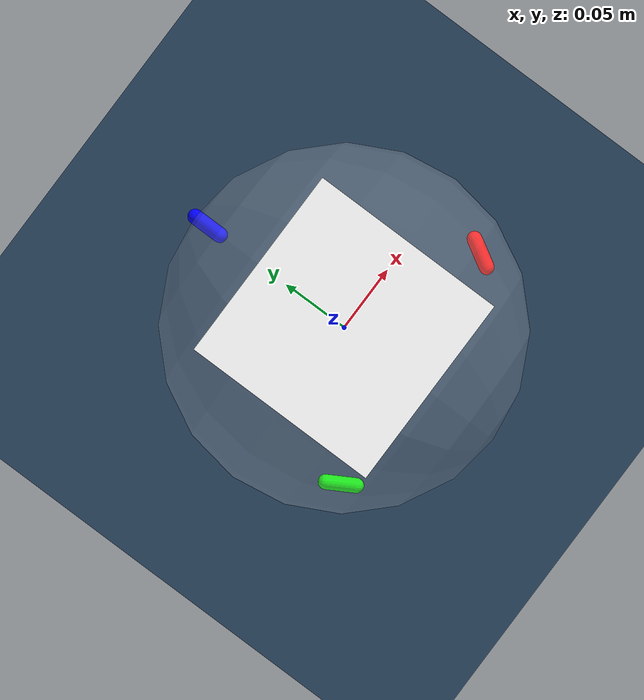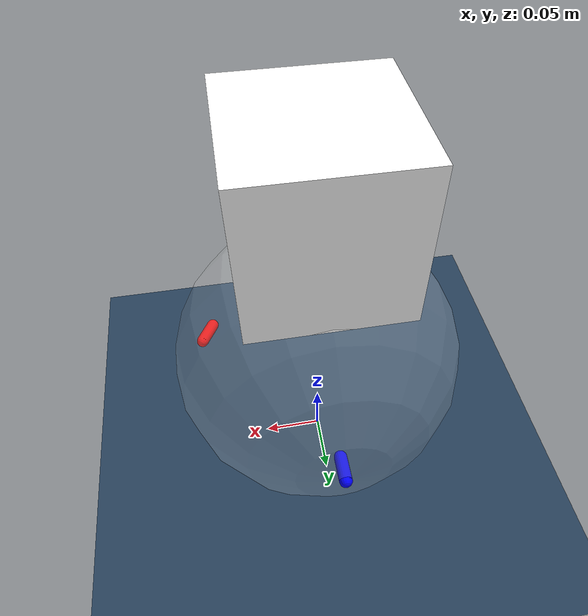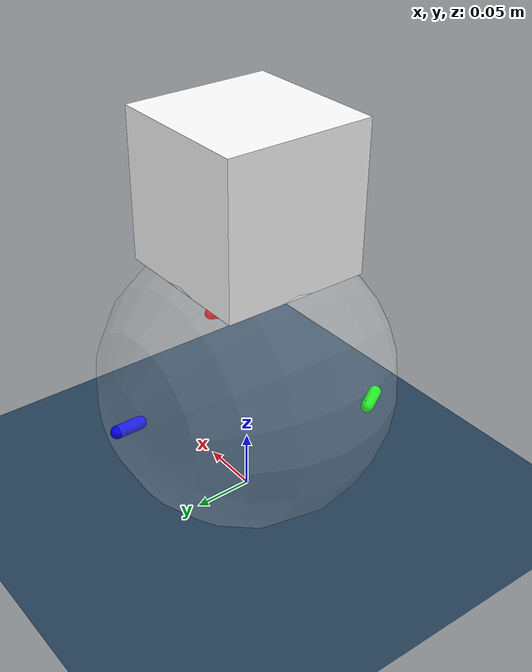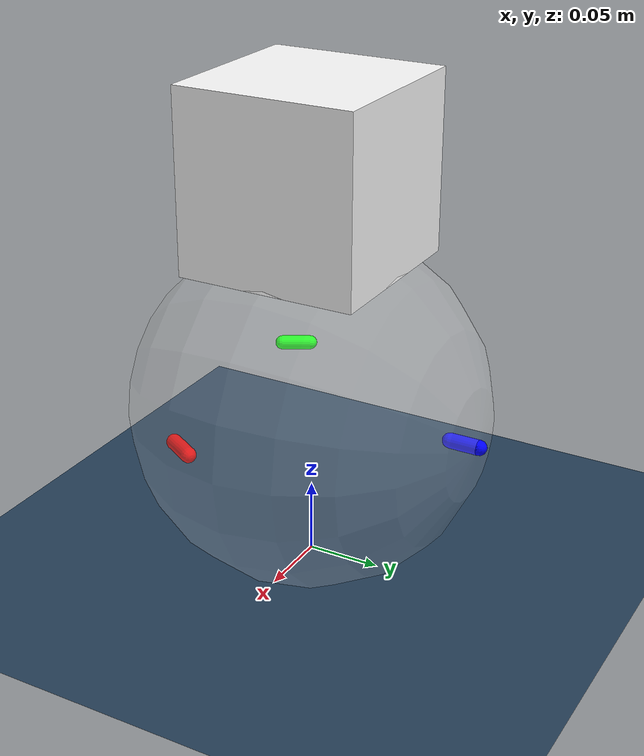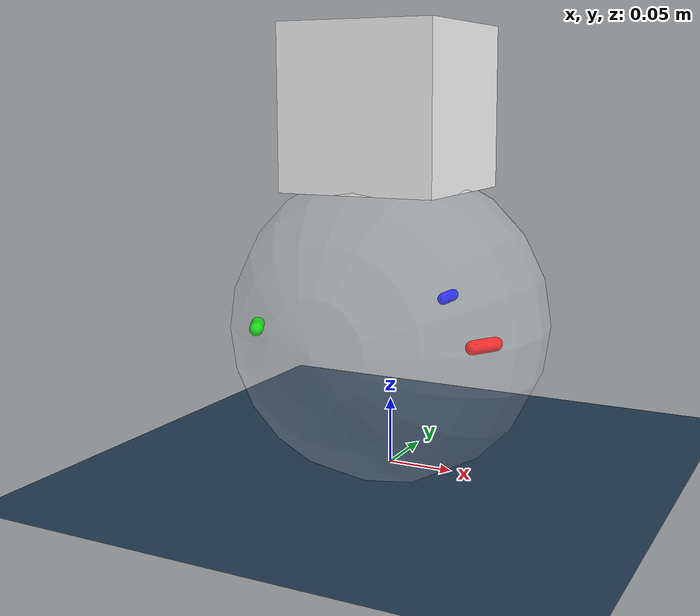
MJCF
<mujoco>
    <option gravity="0 0 -9.80" timestep="0.002"/>
    <size nstack="5000"/>

    <asset>
        <texture type="skybox" builtin="gradient" rgb1=".3 .5 .7" rgb2="0 0 0" width="32" height="512"/>
        <texture name="grid" type="2d" builtin="checker" width="512" height="512" rgb1=".1 .2 .3" rgb2=".2 .3 .4"/>
        <texture name='highlight' type='2d' builtin='gradient' rgb1='255 255 255' rgb2='255 255 255' width='512' height='512'/>
        <material name='ball' texture='highlight' texrepeat='1 1' texuniform='true'/>
        <material name="grid" texture="grid" texrepeat="1 1" texuniform="true" reflectance=".0"/>

        <texture name="bb8_tex" type="2d" file="../bb8_textures/bb8one.png" />
		<material name="bb8_mat" texture="bb8_tex" texrepeat="1 1" texuniform="false"/>
    </asset>

    <worldbody>
        <geom name="floor" size="10 10 .05" type="plane" material="grid" friction="3.0 1.5 0.5"/>
        <light name="spotlight" mode="targetbodycom" target="bb8" diffuse=".8 .8 .8" specular="0.3 0.3 0.3" pos="0 -6 4" cutoff="30"/>
        <light name="top" pos="0 0 2" mode="trackcom"/>

        <body name="bb8" pos="0 0 0.11">
            <joint name="bb8_free" type="free"/>
            <geom type="sphere" size="0.001" mass="0.0001" rgba="0 0 0 0"/>
            <!-- Visible outer sphere -->

                        <!-- Internal chassis that carries 4 wheel joints -->
                        <!-- Internal chassis: a small fixed mass inside the sphere -->
            <body name="chassis" pos="0 0 0">
                <joint name="chassis_fixed" type="ball" limited="false" />
                <geom name="bb8_outer" type="sphere" size="0.12" rgba="1 1 1 0.2" mass="2.0" material="bb8_mat" euler="90 0 0"/>

                                <!-- Wheel at 0° (pointing +Y) -->
                <body name="wheel_0deg" pos="0.0 0.1 0.0">
                    <!-- tangent axis = (-y, x) → (-0.1, 0.0) -->
                    <joint name="wheel_0deg_joint" type="hinge" axis="-1 0 0" limited="false"/>
                    <geom type="capsule" fromto="0 0 0  0 0.02 0" size="0.005" mass="0.005" rgba="0 0 1 1"/>
                </body>

                                    <!-- Wheel at 120° (x=-0.0866, y=-0.05) -->
                <body name="wheel_120deg" pos="-0.0866 -0.05 0.0">
                    <!-- tangent axis = (-y, x) → (0.05, -0.0866) -->
                    <joint name="wheel_120deg_joint" type="hinge" axis="0.5 -0.866 0" limited="false"/>
                    <geom type="capsule" fromto="0 0 0  0.01 -0.0173 0" size="0.005" mass="0.005" rgba="0 1 0 1"/>
                </body>
                                    <!-- Wheel at 240° (x=0.0866, y=-0.05) -->
                <body name="wheel_240deg" pos="0.0866 -0.05 0.0">
                    <!-- tangent axis = (-y, x) → (0.05, 0.0866) -->
                    <joint name="wheel_240deg_joint" type="hinge" axis="0.5 0.866 0" limited="false"/>
                    <geom type="capsule" fromto="0 0 0  0.01 0.0173 0" size="0.005" mass="0.005" rgba="1 0 0 1"/>
                </body>
            </body>

            <!-- Head -->
            <body name="head" pos="0 0 0.16">
                <joint name="head_joint"/>
                <geom type="box" size=".06 .06 .06" rgba="1 1 1 1" mass="0.3"/>
            </body>
        </body>
    </worldbody>

    <actuator>
      <!-- Front @ 0° : contributes +τx -->
      <motor name="motor_front" joint="bb8_free"
             gear="0 0 0  1 0 0" ctrlrange="-3 3"/>
              <!-- Motor at 120° -->
      <motor name="motor_120deg" joint="bb8_free"
             gear="0 0 0  -0.5 0.866 0" ctrlrange="-3 3"/>
              <!-- Motor at 240° -->
      <motor name="motor_240deg" joint="bb8_free"
             gear="0 0 0  -0.5 -0.866 0" ctrlrange="-3 3"/>

    </actuator>

</mujoco>
